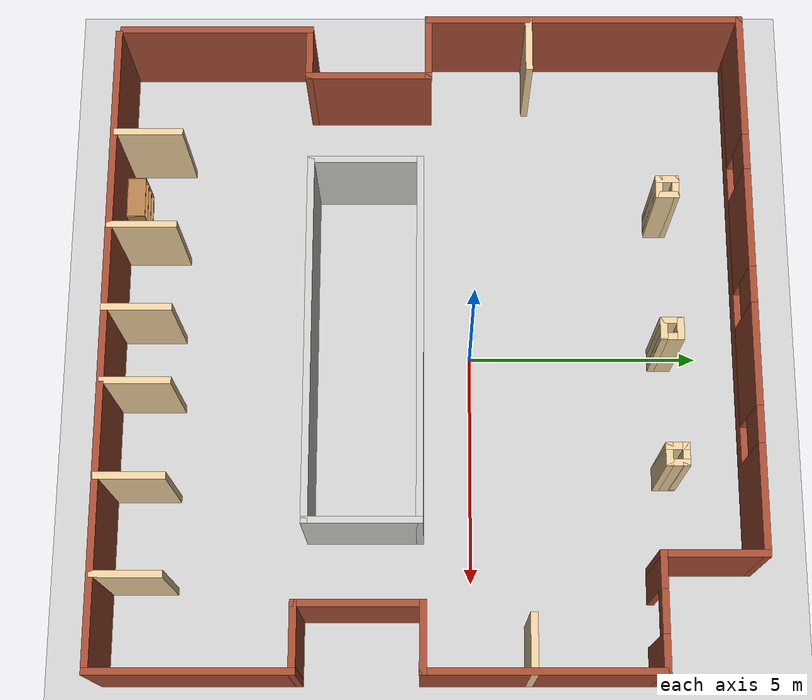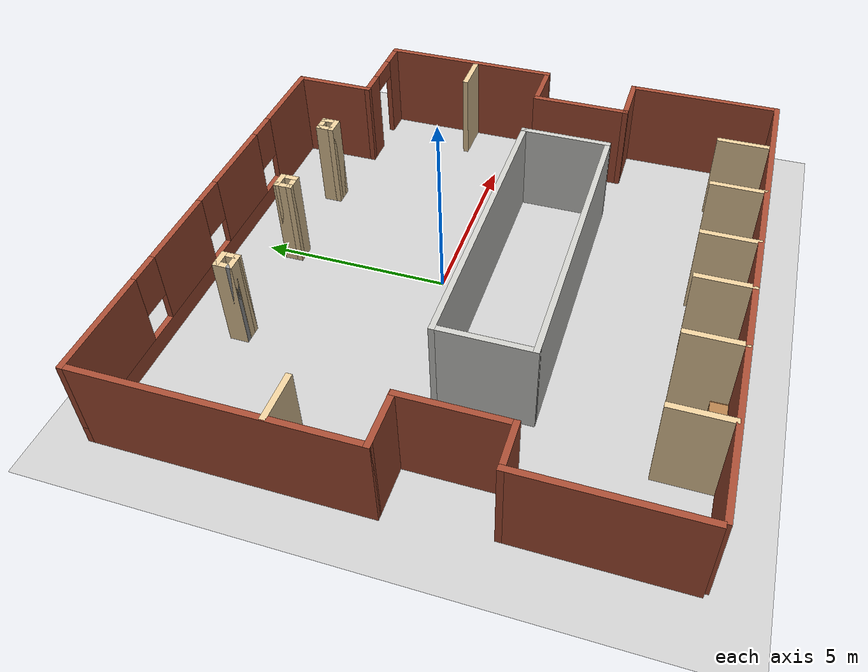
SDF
<sdf version="1.6">
 <world name="default">
  <model name="ground_plane">
   <static>1</static>
   <link name="link">
    <collision name="collision">
     <geometry><plane><normal>0 0 1</normal><size>100 100</size></plane></geometry>
     <surface><friction><ode><mu>100</mu><mu2>50</mu2></ode></friction></surface>
    </collision>
    <visual name="visual">
     <cast_shadows>0</cast_shadows>
     <geometry><plane><normal>0 0 1</normal><size>100 100</size></plane></geometry>
     <material>
      <script><uri>file://media/materials/scripts/gazebo.material</uri><name>Gazebo/Grey</name></script>
     </material>
    </visual>
   </link>
  </model>
  <model name="Untitled">
   <pose>-0.0049 -0.88998 0 0 -0 0</pose>
   <link name="Wall_10">
    <collision name="Wall_10_Collision">
     <geometry><box><size>1.5 0.15 2.5</size></box></geometry>
     <pose>0 0 1.25 0 -0 0</pose>
    </collision>
    <visual name="Wall_10_Visual">
     <pose>0 0 1.25 0 -0 0</pose>
     <geometry><box><size>1.5 0.15 2.5</size></box></geometry>
     <material>
      <script><uri>file://media/materials/scripts/gazebo.material</uri><name>Gazebo/Bricks</name></script>
      <ambient>1 1 1 1</ambient>
     </material>
    </visual>
    <pose>6.42294 -2.725 0 0 -0 3.14159</pose>
   </link>
   <link name="Wall_11">
    <collision name="Wall_11_Collision">
     <geometry><box><size>2.75 0.15 2.5</size></box></geometry>
     <pose>0 0 1.25 0 -0 0</pose>
    </collision>
    <visual name="Wall_11_Visual">
     <pose>0 0 1.25 0 -0 0</pose>
     <geometry><box><size>2.75 0.15 2.5</size></box></geometry>
     <material>
      <script><uri>file://media/materials/scripts/gazebo.material</uri><name>Gazebo/Bricks</name></script>
      <ambient>1 1 1 1</ambient>
     </material>
    </visual>
    <pose>5.74794 -1.425 0 0 -0 1.5708</pose>
   </link>
   <link name="Wall_12">
    <collision name="Wall_12_Collision">
     <geometry><box><size>1.5 0.15 2.5</size></box></geometry>
     <pose>0 0 1.25 0 -0 0</pose>
    </collision>
    <visual name="Wall_12_Visual">
     <pose>0 0 1.25 0 -0 0</pose>
     <geometry><box><size>1.5 0.15 2.5</size></box></geometry>
     <material>
      <script><uri>file://media/materials/scripts/gazebo.material</uri><name>Gazebo/Bricks</name></script>
      <ambient>1 1 1 1</ambient>
     </material>
    </visual>
    <pose>6.42294 -0.125 0 0 -0 0</pose>
   </link>
   <link name="Wall_13">
    <collision name="Wall_13_Collision">
     <geometry><box><size>5 0.15 2.5</size></box></geometry>
     <pose>0 0 1.25 0 -0 0</pose>
    </collision>
    <visual name="Wall_13_Visual">
     <pose>0 0 1.25 0 -0 0</pose>
     <geometry><box><size>5 0.15 2.5</size></box></geometry>
     <material>
      <script><uri>file://media/materials/scripts/gazebo.material</uri><name>Gazebo/Bricks</name></script>
      <ambient>1 1 1 1</ambient>
     </material>
    </visual>
    <pose>7.09794 2.3 0 0 -0 1.5708</pose>
   </link>
   <link name="Wall_14">
    <pose>5.92294 4.725 0 0 -0 3.14159</pose>
    <visual name="Wall_14_Visual_0">
     <pose>-0.84094 0 1.25 0 -0 0</pose>
     <geometry><box><size>0.818121 0.15 2.5</size></box></geometry>
     <material>
      <script><uri>file://media/materials/scripts/gazebo.material</uri><name>Gazebo/Bricks</name></script>
      <ambient>1 1 1 1</ambient>
     </material>
    </visual>
    <collision name="Wall_14_Collision_0">
     <geometry><box><size>0.818121 0.15 2.5</size></box></geometry>
     <pose>-0.84094 0 1.25 0 -0 0</pose>
    </collision>
    <visual name="Wall_14_Visual_1">
     <pose>0.85906 0 1.25 0 -0 0</pose>
     <geometry><box><size>0.781879 0.15 2.5</size></box></geometry>
     <material>
      <script><uri>file://media/materials/scripts/gazebo.material</uri><name>Gazebo/Bricks</name></script>
      <ambient>1 1 1 1</ambient>
     </material>
    </visual>
    <collision name="Wall_14_Collision_1">
     <geometry><box><size>0.781879 0.15 2.5</size></box></geometry>
     <pose>0.85906 0 1.25 0 -0 0</pose>
    </collision>
    <visual name="Wall_14_Visual_2">
     <pose>0.018121 0 2.25 0 -0 0</pose>
     <geometry><box><size>0.9 0.15 0.5</size></box></geometry>
     <material>
      <script><uri>file://media/materials/scripts/gazebo.material</uri><name>Gazebo/Bricks</name></script>
      <ambient>1 1 1 1</ambient>
     </material>
    </visual>
    <collision name="Wall_14_Collision_2">
     <geometry><box><size>0.9 0.15 0.5</size></box></geometry>
     <pose>0.018121 0 2.25 0 -0 0</pose>
    </collision>
   </link>
   <link name="Wall_15">
    <collision name="Wall_15_Collision">
     <geometry><box><size>2.25 0.15 2.5</size></box></geometry>
     <pose>0 0 1.25 0 -0 0</pose>
    </collision>
    <visual name="Wall_15_Visual">
     <pose>0 0 1.25 0 -0 0</pose>
     <geometry><box><size>2.25 0.15 2.5</size></box></geometry>
     <material>
      <script><uri>file://media/materials/scripts/gazebo.material</uri><name>Gazebo/Bricks</name></script>
      <ambient>1 1 1 1</ambient>
     </material>
    </visual>
    <pose>4.74794 5.775 0 0 -0 1.5708</pose>
   </link>
   <link name="Wall_16">
    <pose>-1.17706 6.825 0 0 -0 3.14159</pose>
    <visual name="Wall_16_Visual_0">
     <pose>-4.8211 0 1.25 0 -0 0</pose>
     <geometry><box><size>2.3578 0.15 2.5</size></box></geometry>
     <material>
      <script><uri>file://media/materials/scripts/gazebo.material</uri><name>Gazebo/Bricks</name></script>
      <ambient>1 1 1 1</ambient>
     </material>
    </visual>
    <collision name="Wall_16_Collision_0">
     <geometry><box><size>2.3578 0.15 2.5</size></box></geometry>
     <pose>-4.8211 0 1.25 0 -0 0</pose>
    </collision>
    <visual name="Wall_16_Visual_1">
     <pose>1.1789 0 0.25 0 -0 0</pose>
     <geometry><box><size>9.6422 0.15 0.5</size></box></geometry>
     <material>
      <script><uri>file://media/materials/scripts/gazebo.material</uri><name>Gazebo/Bricks</name></script>
      <ambient>1 1 1 1</ambient>
     </material>
    </visual>
    <collision name="Wall_16_Collision_1">
     <geometry><box><size>9.6422 0.15 0.5</size></box></geometry>
     <pose>1.1789 0 0.25 0 -0 0</pose>
    </collision>
    <visual name="Wall_16_Visual_2">
     <pose>-1.72714 0 1.5 0 -0 0</pose>
     <geometry><box><size>2.23011 0.15 2</size></box></geometry>
     <material>
      <script><uri>file://media/materials/scripts/gazebo.material</uri><name>Gazebo/Bricks</name></script>
      <ambient>1 1 1 1</ambient>
     </material>
    </visual>
    <collision name="Wall_16_Collision_2">
     <geometry><box><size>2.23011 0.15 2</size></box></geometry>
     <pose>-1.72714 0 1.5 0 -0 0</pose>
    </collision>
    <visual name="Wall_16_Visual_3">
     <pose>1.2914 0 1.5 0 -0 0</pose>
     <geometry><box><size>2.20698 0.15 2</size></box></geometry>
     <material>
      <script><uri>file://media/materials/scripts/gazebo.material</uri><name>Gazebo/Bricks</name></script>
      <ambient>1 1 1 1</ambient>
     </material>
    </visual>
    <collision name="Wall_16_Collision_3">
     <geometry><box><size>2.20698 0.15 2</size></box></geometry>
     <pose>1.2914 0 1.5 0 -0 0</pose>
    </collision>
    <visual name="Wall_16_Visual_4">
     <pose>4.59744 0 1.5 0 -0 0</pose>
     <geometry><box><size>2.80511 0.15 2</size></box></geometry>
     <material>
      <script><uri>file://media/materials/scripts/gazebo.material</uri><name>Gazebo/Bricks</name></script>
      <ambient>1 1 1 1</ambient>
     </material>
    </visual>
    <collision name="Wall_16_Collision_4">
     <geometry><box><size>2.80511 0.15 2</size></box></geometry>
     <pose>4.59744 0 1.5 0 -0 0</pose>
    </collision>
    <visual name="Wall_16_Visual_5">
     <pose>-3.2422 0 1.9 0 -0 0</pose>
     <geometry><box><size>0.8 0.15 1.2</size></box></geometry>
     <material>
      <script><uri>file://media/materials/scripts/gazebo.material</uri><name>Gazebo/Bricks</name></script>
      <ambient>1 1 1 1</ambient>
     </material>
    </visual>
    <collision name="Wall_16_Collision_5">
     <geometry><box><size>0.8 0.15 1.2</size></box></geometry>
     <pose>-3.2422 0 1.9 0 -0 0</pose>
    </collision>
    <visual name="Wall_16_Visual_6">
     <pose>-0.212089 0 1.9 0 -0 0</pose>
     <geometry><box><size>0.8 0.15 1.2</size></box></geometry>
     <material>
      <script><uri>file://media/materials/scripts/gazebo.material</uri><name>Gazebo/Bricks</name></script>
      <ambient>1 1 1 1</ambient>
     </material>
    </visual>
    <collision name="Wall_16_Collision_6">
     <geometry><box><size>0.8 0.15 1.2</size></box></geometry>
     <pose>-0.212089 0 1.9 0 -0 0</pose>
    </collision>
    <visual name="Wall_16_Visual_7">
     <pose>2.79489 0 1.9 0 -0 0</pose>
     <geometry><box><size>0.8 0.15 1.2</size></box></geometry>
     <material>
      <script><uri>file://media/materials/scripts/gazebo.material</uri><name>Gazebo/Bricks</name></script>
      <ambient>1 1 1 1</ambient>
     </material>
    </visual>
    <collision name="Wall_16_Collision_7">
     <geometry><box><size>0.8 0.15 1.2</size></box></geometry>
     <pose>2.79489 0 1.9 0 -0 0</pose>
    </collision>
   </link>
   <link name="Wall_17">
    <collision name="Wall_17_Collision">
     <geometry><box><size>7 0.15 2.5</size></box></geometry>
     <pose>0 0 1.25 0 -0 0</pose>
    </collision>
    <visual name="Wall_17_Visual">
     <pose>0 0 1.25 0 -0 0</pose>
     <geometry><box><size>7 0.15 2.5</size></box></geometry>
     <material>
      <script><uri>file://media/materials/scripts/gazebo.material</uri><name>Gazebo/Bricks</name></script>
      <ambient>1 1 1 1</ambient>
     </material>
    </visual>
    <pose>-7.10206 3.4 0 0 0 -1.5708</pose>
   </link>
   <link name="Wall_18">
    <collision name="Wall_18_Collision">
     <geometry><box><size>1.5 0.15 2.5</size></box></geometry>
     <pose>0 0 1.25 0 -0 0</pose>
    </collision>
    <visual name="Wall_18_Visual">
     <pose>0 0 1.25 0 -0 0</pose>
     <geometry><box><size>1.5 0.15 2.5</size></box></geometry>
     <material>
      <script><uri>file://media/materials/scripts/gazebo.material</uri><name>Gazebo/Bricks</name></script>
      <ambient>1 1 1 1</ambient>
     </material>
    </visual>
    <pose>-6.42706 -0.025 0 0 -0 0</pose>
   </link>
   <link name="Wall_19">
    <collision name="Wall_19_Collision">
     <geometry><box><size>2.75 0.15 2.5</size></box></geometry>
     <pose>0 0 1.25 0 -0 0</pose>
    </collision>
    <visual name="Wall_19_Visual">
     <pose>0 0 1.25 0 -0 0</pose>
     <geometry><box><size>2.75 0.15 2.5</size></box></geometry>
     <material>
      <script><uri>file://media/materials/scripts/gazebo.material</uri><name>Gazebo/Bricks</name></script>
      <ambient>1 1 1 1</ambient>
     </material>
    </visual>
    <pose>-5.75206 -1.325 0 0 0 -1.5708</pose>
   </link>
   <link name="Wall_20">
    <collision name="Wall_20_Collision">
     <geometry><box><size>1.25 0.15 2.5</size></box></geometry>
     <pose>0 0 1.25 0 -0 0</pose>
    </collision>
    <visual name="Wall_20_Visual">
     <pose>0 0 1.25 0 -0 0</pose>
     <geometry><box><size>1.25 0.15 2.5</size></box></geometry>
     <material>
      <script><uri>file://media/materials/scripts/gazebo.material</uri><name>Gazebo/Bricks</name></script>
      <ambient>1 1 1 1</ambient>
     </material>
    </visual>
    <pose>-6.30206 -2.625 0 0 -0 3.14159</pose>
   </link>
   <link name="Wall_21">
    <collision name="Wall_21_Collision">
     <geometry><box><size>4.25 0.15 2.5</size></box></geometry>
     <pose>0 0 1.25 0 -0 0</pose>
    </collision>
    <visual name="Wall_21_Visual">
     <pose>0 0 1.25 0 -0 0</pose>
     <geometry><box><size>4.25 0.15 2.5</size></box></geometry>
     <material>
      <script><uri>file://media/materials/scripts/gazebo.material</uri><name>Gazebo/Bricks</name></script>
      <ambient>1 1 1 1</ambient>
     </material>
    </visual>
    <pose>-6.85206 -4.675 0 0 0 -1.5708</pose>
   </link>
   <link name="Wall_23">
    <collision name="Wall_23_Collision">
     <geometry><box><size>8 0.15 2.5</size></box></geometry>
     <pose>0 0 1.25 0 -0 0</pose>
    </collision>
    <visual name="Wall_23_Visual">
     <pose>0 0 1.25 0 -0 0</pose>
     <geometry><box><size>8 0.15 2.5</size></box></geometry>
     <material>
      <script><uri>file://media/materials/scripts/gazebo.material</uri><name>Gazebo/CeilingTiled</name></script>
      <ambient>1 1 1 1</ambient>
     </material>
    </visual>
    <pose>0.138097 -2.54584 0 0 -0 0</pose>
   </link>
   <link name="Wall_24">
    <collision name="Wall_24_Collision">
     <geometry><box><size>2.5 0.15 2.5</size></box></geometry>
     <pose>0 0 1.25 0 -0 0</pose>
    </collision>
    <visual name="Wall_24_Visual">
     <pose>0 0 1.25 0 -0 0</pose>
     <geometry><box><size>2.5 0.15 2.5</size></box></geometry>
     <material>
      <script><uri>file://media/materials/scripts/gazebo.material</uri><name>Gazebo/CeilingTiled</name></script>
      <ambient>1 1 1 1</ambient>
     </material>
    </visual>
    <pose>4.0631 -1.37084 0 0 -0 1.5708</pose>
   </link>
   <link name="Wall_25">
    <collision name="Wall_25_Collision">
     <geometry><box><size>8 0.15 2.5</size></box></geometry>
     <pose>0 0 1.25 0 -0 0</pose>
    </collision>
    <visual name="Wall_25_Visual">
     <pose>0 0 1.25 0 -0 0</pose>
     <geometry><box><size>8 0.15 2.5</size></box></geometry>
     <material>
      <script><uri>file://media/materials/scripts/gazebo.material</uri><name>Gazebo/CeilingTiled</name></script>
      <ambient>1 1 1 1</ambient>
     </material>
    </visual>
    <pose>0.138097 -0.195838 0 0 -0 3.14159</pose>
   </link>
   <link name="Wall_26">
    <collision name="Wall_26_Collision">
     <geometry><box><size>2.5 0.15 2.5</size></box></geometry>
     <pose>0 0 1.25 0 -0 0</pose>
    </collision>
    <visual name="Wall_26_Visual">
     <pose>0 0 1.25 0 -0 0</pose>
     <geometry><box><size>2.5 0.15 2.5</size></box></geometry>
     <material>
      <script><uri>file://media/materials/scripts/gazebo.material</uri><name>Gazebo/CeilingTiled</name></script>
      <ambient>1 1 1 1</ambient>
     </material>
    </visual>
    <pose>-3.7869 -1.37084 0 0 0 -1.5708</pose>
   </link>
   <link name="Wall_28">
    <collision name="Wall_28_Collision">
     <geometry><box><size>1.5 0.15 2.5</size></box></geometry>
     <pose>0 0 1.25 0 -0 0</pose>
    </collision>
    <visual name="Wall_28_Visual">
     <pose>0 0 1.25 0 -0 0</pose>
     <geometry><box><size>1.5 0.15 2.5</size></box></geometry>
     <material>
      <script><uri>file://media/materials/scripts/gazebo.material</uri><name>Gazebo/Grey</name></script>
      <ambient>0.921569 0.807843 0.615686 1</ambient>
     </material>
    </visual>
    <pose>-4.43456 -6.08061 0 0 -0 1.5708</pose>
   </link>
   <link name="Wall_30">
    <collision name="Wall_30_Collision">
     <geometry><box><size>1.5 0.15 2.5</size></box></geometry>
     <pose>0 0 1.25 0 -0 0</pose>
    </collision>
    <visual name="Wall_30_Visual">
     <pose>0 0 1.25 0 -0 0</pose>
     <geometry><box><size>1.5 0.15 2.5</size></box></geometry>
     <material>
      <script><uri>file://media/materials/scripts/gazebo.material</uri><name>Gazebo/Grey</name></script>
      <ambient>0.921569 0.807843 0.615686 1</ambient>
     </material>
    </visual>
    <pose>-2.30654 -6.12687 0 0 -0 1.5708</pose>
   </link>
   <link name="Wall_32">
    <collision name="Wall_32_Collision">
     <geometry><box><size>1.5 0.15 2.5</size></box></geometry>
     <pose>0 0 1.25 0 -0 0</pose>
    </collision>
    <visual name="Wall_32_Visual">
     <pose>0 0 1.25 0 -0 0</pose>
     <geometry><box><size>1.5 0.15 2.5</size></box></geometry>
     <material>
      <script><uri>file://media/materials/scripts/gazebo.material</uri><name>Gazebo/Grey</name></script>
      <ambient>0.921569 0.807843 0.615686 1</ambient>
     </material>
    </visual>
    <pose>-0.456095 -6.15 0 0 -0 1.5708</pose>
   </link>
   <link name="Wall_34">
    <collision name="Wall_34_Collision">
     <geometry><box><size>1.5 0.15 2.5</size></box></geometry>
     <pose>0 0 1.25 0 -0 0</pose>
    </collision>
    <visual name="Wall_34_Visual">
     <pose>0 0 1.25 0 -0 0</pose>
     <geometry><box><size>1.5 0.15 2.5</size></box></geometry>
     <material>
      <script><uri>file://media/materials/scripts/gazebo.material</uri><name>Gazebo/Grey</name></script>
      <ambient>0.921569 0.807843 0.615686 1</ambient>
     </material>
    </visual>
    <pose>1.13992 -6.10374 0 0 -0 1.5708</pose>
   </link>
   <link name="Wall_36">
    <collision name="Wall_36_Collision">
     <geometry><box><size>1.5 0.15 2.5</size></box></geometry>
     <pose>0 0 1.25 0 -0 0</pose>
    </collision>
    <visual name="Wall_36_Visual">
     <pose>0 0 1.25 0 -0 0</pose>
     <geometry><box><size>1.5 0.15 2.5</size></box></geometry>
     <material>
      <script><uri>file://media/materials/scripts/gazebo.material</uri><name>Gazebo/Grey</name></script>
      <ambient>0.921569 0.807843 0.615686 1</ambient>
     </material>
    </visual>
    <pose>3.15228 -6.12687 0 0 -0 1.5708</pose>
   </link>
   <link name="Wall_38">
    <collision name="Wall_38_Collision">
     <geometry><box><size>1.5 0.15 2.5</size></box></geometry>
     <pose>0 0 1.25 0 -0 0</pose>
    </collision>
    <visual name="Wall_38_Visual">
     <pose>0 0 1.25 0 -0 0</pose>
     <geometry><box><size>1.5 0.15 2.5</size></box></geometry>
     <material>
      <script><uri>file://media/materials/scripts/gazebo.material</uri><name>Gazebo/Grey</name></script>
      <ambient>0.921569 0.807843 0.615686 1</ambient>
     </material>
    </visual>
    <pose>5.16464 -6.10374 0 0 -0 1.5708</pose>
   </link>
   <link name="Wall_46">
    <collision name="Wall_46_Collision">
     <geometry><box><size>0.15 0.15 2.5</size></box></geometry>
     <pose>0 0 1.25 0 -0 0</pose>
    </collision>
    <visual name="Wall_46_Visual">
     <pose>0 0 1.25 0 -0 0</pose>
     <geometry><box><size>0.15 0.15 2.5</size></box></geometry>
     <material>
      <script><uri>file://media/materials/scripts/gazebo.material</uri><name>Gazebo/Grey</name></script>
      <ambient>1 1 1 1</ambient>
     </material>
    </visual>
    <pose>-3.332 4.92047 0 0 -0 0</pose>
   </link>
   <link name="Wall_49">
    <collision name="Wall_49_Collision">
     <geometry><box><size>0.5 0.15 2.5</size></box></geometry>
     <pose>0 0 1.25 0 -0 0</pose>
    </collision>
    <visual name="Wall_49_Visual">
     <pose>0 0 1.25 0 -0 0</pose>
     <geometry><box><size>0.5 0.15 2.5</size></box></geometry>
     <material>
      <script><uri>file://media/materials/scripts/gazebo.material</uri><name>Gazebo/Grey</name></script>
      <ambient>0.921569 0.807843 0.615686 1</ambient>
     </material>
    </visual>
    <pose>-3.15699 4.92047 0 0 -0 0</pose>
   </link>
   <link name="Wall_50">
    <collision name="Wall_50_Collision">
     <geometry><box><size>0.5 0.15 2.5</size></box></geometry>
     <pose>0 0 1.25 0 -0 0</pose>
    </collision>
    <visual name="Wall_50_Visual">
     <pose>0 0 1.25 0 -0 0</pose>
     <geometry><box><size>0.5 0.15 2.5</size></box></geometry>
     <material>
      <script><uri>file://media/materials/scripts/gazebo.material</uri><name>Gazebo/Grey</name></script>
      <ambient>0.921569 0.807843 0.615686 1</ambient>
     </material>
    </visual>
    <pose>-2.98199 5.09547 0 0 -0 1.5708</pose>
   </link>
   <link name="Wall_51">
    <collision name="Wall_51_Collision">
     <geometry><box><size>0.5 0.15 2.5</size></box></geometry>
     <pose>0 0 1.25 0 -0 0</pose>
    </collision>
    <visual name="Wall_51_Visual">
     <pose>0 0 1.25 0 -0 0</pose>
     <geometry><box><size>0.5 0.15 2.5</size></box></geometry>
     <material>
      <script><uri>file://media/materials/scripts/gazebo.material</uri><name>Gazebo/Grey</name></script>
      <ambient>0.921569 0.807843 0.615686 1</ambient>
     </material>
    </visual>
    <pose>-3.15699 5.27047 0 0 -0 3.14159</pose>
   </link>
   <link name="Wall_52">
    <collision name="Wall_52_Collision">
     <geometry><box><size>0.5 0.15 2.5</size></box></geometry>
     <pose>0 0 1.25 0 -0 0</pose>
    </collision>
    <visual name="Wall_52_Visual">
     <pose>0 0 1.25 0 -0 0</pose>
     <geometry><box><size>0.5 0.15 2.5</size></box></geometry>
     <material>
      <script><uri>file://media/materials/scripts/gazebo.material</uri><name>Gazebo/Grey</name></script>
      <ambient>0.921569 0.807843 0.615686 1</ambient>
     </material>
    </visual>
    <pose>-3.332 5.09547 0 0 0 -1.5708</pose>
   </link>
   <link name="Wall_54">
    <collision name="Wall_54_Collision">
     <geometry><box><size>0.5 0.15 2.5</size></box></geometry>
     <pose>0 0 1.25 0 -0 0</pose>
    </collision>
    <visual name="Wall_54_Visual">
     <pose>0 0 1.25 0 -0 0</pose>
     <geometry><box><size>0.5 0.15 2.5</size></box></geometry>
     <material>
      <script><uri>file://media/materials/scripts/gazebo.material</uri><name>Gazebo/Grey</name></script>
      <ambient>0.921569 0.807843 0.615686 1</ambient>
     </material>
    </visual>
    <pose>-0.16542 5.08224 0 0 -0 1.5708</pose>
   </link>
   <link name="Wall_55">
    <collision name="Wall_55_Collision">
     <geometry><box><size>0.5 0.15 2.5</size></box></geometry>
     <pose>0 0 1.25 0 -0 0</pose>
    </collision>
    <visual name="Wall_55_Visual">
     <pose>0 0 1.25 0 -0 0</pose>
     <geometry><box><size>0.5 0.15 2.5</size></box></geometry>
     <material>
      <script><uri>file://media/materials/scripts/gazebo.material</uri><name>Gazebo/Grey</name></script>
      <ambient>0.921569 0.807843 0.615686 1</ambient>
     </material>
    </visual>
    <pose>0.00958 5.25724 0 0 -0 0</pose>
   </link>
   <link name="Wall_56">
    <collision name="Wall_56_Collision">
     <geometry><box><size>0.5 0.15 2.5</size></box></geometry>
     <pose>0 0 1.25 0 -0 0</pose>
    </collision>
    <visual name="Wall_56_Visual">
     <pose>0 0 1.25 0 -0 0</pose>
     <geometry><box><size>0.5 0.15 2.5</size></box></geometry>
     <material>
      <script><uri>file://media/materials/scripts/gazebo.material</uri><name>Gazebo/Grey</name></script>
      <ambient>0.921569 0.807843 0.615686 1</ambient>
     </material>
    </visual>
    <pose>0.18458 5.08224 0 0 0 -1.5708</pose>
   </link>
   <link name="Wall_57">
    <collision name="Wall_57_Collision">
     <geometry><box><size>0.5 0.15 2.5</size></box></geometry>
     <pose>0 0 1.25 0 -0 0</pose>
    </collision>
    <visual name="Wall_57_Visual">
     <pose>0 0 1.25 0 -0 0</pose>
     <geometry><box><size>0.5 0.15 2.5</size></box></geometry>
     <material>
      <script><uri>file://media/materials/scripts/gazebo.material</uri><name>Gazebo/Grey</name></script>
      <ambient>0.921569 0.807843 0.615686 1</ambient>
     </material>
    </visual>
    <pose>0.00958 4.90724 0 0 -0 3.14159</pose>
   </link>
   <link name="Wall_59">
    <collision name="Wall_59_Collision">
     <geometry><box><size>0.5 0.15 2.5</size></box></geometry>
     <pose>0 0 1.25 0 -0 0</pose>
    </collision>
    <visual name="Wall_59_Visual">
     <pose>0 0 1.25 0 -0 0</pose>
     <geometry><box><size>0.5 0.15 2.5</size></box></geometry>
     <material>
      <script><uri>file://media/materials/scripts/gazebo.material</uri><name>Gazebo/Grey</name></script>
      <ambient>0.921569 0.807843 0.615686 1</ambient>
     </material>
    </visual>
    <pose>2.53248 5.09547 0 0 -0 1.5708</pose>
   </link>
   <link name="Wall_60">
    <collision name="Wall_60_Collision">
     <geometry><box><size>0.5 0.15 2.5</size></box></geometry>
     <pose>0 0 1.25 0 -0 0</pose>
    </collision>
    <visual name="Wall_60_Visual">
     <pose>0 0 1.25 0 -0 0</pose>
     <geometry><box><size>0.5 0.15 2.5</size></box></geometry>
     <material>
      <script><uri>file://media/materials/scripts/gazebo.material</uri><name>Gazebo/Grey</name></script>
      <ambient>0.921569 0.807843 0.615686 1</ambient>
     </material>
    </visual>
    <pose>2.70748 5.27047 0 0 -0 0</pose>
   </link>
   <link name="Wall_61">
    <collision name="Wall_61_Collision">
     <geometry><box><size>0.5 0.15 2.5</size></box></geometry>
     <pose>0 0 1.25 0 -0 0</pose>
    </collision>
    <visual name="Wall_61_Visual">
     <pose>0 0 1.25 0 -0 0</pose>
     <geometry><box><size>0.5 0.15 2.5</size></box></geometry>
     <material>
      <script><uri>file://media/materials/scripts/gazebo.material</uri><name>Gazebo/Grey</name></script>
      <ambient>0.921569 0.807843 0.615686 1</ambient>
     </material>
    </visual>
    <pose>2.88248 5.09547 0 0 0 -1.5708</pose>
   </link>
   <link name="Wall_62">
    <collision name="Wall_62_Collision">
     <geometry><box><size>0.5 0.15 2.5</size></box></geometry>
     <pose>0 0 1.25 0 -0 0</pose>
    </collision>
    <visual name="Wall_62_Visual">
     <pose>0 0 1.25 0 -0 0</pose>
     <geometry><box><size>0.5 0.15 2.5</size></box></geometry>
     <material>
      <script><uri>file://media/materials/scripts/gazebo.material</uri><name>Gazebo/Grey</name></script>
      <ambient>0.921569 0.807843 0.615686 1</ambient>
     </material>
    </visual>
    <pose>2.70748 4.92047 0 0 -0 3.14159</pose>
   </link>
   <link name="Wall_66">
    <collision name="Wall_66_Collision">
     <geometry><box><size>1.25 0.15 2.5</size></box></geometry>
     <pose>0 0 1.25 0 -0 0</pose>
    </collision>
    <visual name="Wall_66_Visual">
     <pose>0 0 1.25 0 -0 0</pose>
     <geometry><box><size>1.25 0.15 2.5</size></box></geometry>
     <material>
      <script><uri>file://media/materials/scripts/gazebo.material</uri><name>Gazebo/Grey</name></script>
      <ambient>0.921569 0.807843 0.615686 1</ambient>
     </material>
    </visual>
    <pose>6.55206 2.09572 0 0 -0 3.14159</pose>
   </link>
   <link name="Wall_68">
    <collision name="Wall_68_Collision">
     <geometry><box><size>1.25 0.15 2.5</size></box></geometry>
     <pose>0 0 1.25 0 -0 0</pose>
    </collision>
    <visual name="Wall_68_Visual">
     <pose>0 0 1.25 0 -0 0</pose>
     <geometry><box><size>1.25 0.15 2.5</size></box></geometry>
     <material>
      <script><uri>file://media/materials/scripts/gazebo.material</uri><name>Gazebo/Grey</name></script>
      <ambient>0.921569 0.807843 0.615686 1</ambient>
     </material>
    </visual>
    <pose>-6.527 2.18824 0 0 -0 0</pose>
   </link>
   <link name="Wall_8">
    <collision name="Wall_8_Collision">
     <geometry><box><size>14 0.15 2.5</size></box></geometry>
     <pose>0 0 1.25 0 -0 0</pose>
    </collision>
    <visual name="Wall_8_Visual">
     <pose>0 0 1.25 0 -0 0</pose>
     <geometry><box><size>14 0.15 2.5</size></box></geometry>
     <material>
      <script><uri>file://media/materials/scripts/gazebo.material</uri><name>Gazebo/Bricks</name></script>
      <ambient>1 1 1 1</ambient>
     </material>
    </visual>
    <pose>0.172943 -6.825 0 0 -0 0</pose>
   </link>
   <link name="Wall_9">
    <collision name="Wall_9_Collision">
     <geometry><box><size>4.25 0.15 2.5</size></box></geometry>
     <pose>0 0 1.25 0 -0 0</pose>
    </collision>
    <visual name="Wall_9_Visual">
     <pose>0 0 1.25 0 -0 0</pose>
     <geometry><box><size>4.25 0.15 2.5</size></box></geometry>
     <material>
      <script><uri>file://media/materials/scripts/gazebo.material</uri><name>Gazebo/Bricks</name></script>
      <ambient>1 1 1 1</ambient>
     </material>
    </visual>
    <pose>7.09794 -4.775 0 0 -0 1.5708</pose>
   </link>
   <static>1</static>
  </model>
  <model name="bookshelf">
   <static>1</static>
   <link name="link">
    <inertial><mass>1</mass></inertial>
    <collision name="back">
     <pose>0 0.005 0.6 0 -0 0</pose>
     <geometry><box><size>0.9 0.01 1.2</size></box></geometry>
    </collision>
    <visual name="visual1">
     <pose>0 0.005 0.6 0 -0 0</pose>
     <geometry><box><size>0.9 0.01 1.2</size></box></geometry>
     <material>
      <script><uri>file://media/materials/scripts/gazebo.material</uri><name>Gazebo/Wood</name></script>
     </material>
    </visual>
    <collision name="left_side">
     <pose>0.45 -0.195 0.6 0 -0 0</pose>
     <geometry><box><size>0.02 0.4 1.2</size></box></geometry>
    </collision>
    <visual name="visual2">
     <pose>0.45 -0.195 0.6 0 -0 0</pose>
     <geometry><box><size>0.02 0.4 1.2</size></box></geometry>
     <material>
      <script><uri>file://media/materials/scripts/gazebo.material</uri><name>Gazebo/Wood</name></script>
     </material>
    </visual>
    <collision name="right_side">
     <pose>-0.45 -0.195 0.6 0 -0 0</pose>
     <geometry><box><size>0.02 0.4 1.2</size></box></geometry>
    </collision>
    <visual name="visual3">
     <pose>-0.45 -0.195 0.6 0 -0 0</pose>
     <geometry><box><size>0.02 0.4 1.2</size></box></geometry>
     <material>
      <script><uri>file://media/materials/scripts/gazebo.material</uri><name>Gazebo/Wood</name></script>
     </material>
    </visual>
    <collision name="bottom">
     <pose>0 -0.195 0.03 0 -0 0</pose>
     <geometry><box><size>0.88 0.4 0.06</size></box></geometry>
    </collision>
    <visual name="visual4">
     <pose>0 -0.195 0.03 0 -0 0</pose>
     <geometry><box><size>0.88 0.4 0.06</size></box></geometry>
     <material>
      <script><uri>file://media/materials/scripts/gazebo.material</uri><name>Gazebo/Wood</name></script>
     </material>
    </visual>
    <collision name="top">
     <pose>0 -0.195 1.19 0 -0 0</pose>
     <geometry><box><size>0.88 0.4 0.02</size></box></geometry>
    </collision>
    <visual name="visual5">
     <pose>0 -0.195 1.19 0 -0 0</pose>
     <geometry><box><size>0.88 0.4 0.02</size></box></geometry>
     <material>
      <script><uri>file://media/materials/scripts/gazebo.material</uri><name>Gazebo/Wood</name></script>
     </material>
    </visual>
    <collision name="low_shelf">
     <pose>0 -0.195 0.43 0 -0 0</pose>
     <geometry><box><size>0.88 0.4 0.02</size></box></geometry>
    </collision>
    <visual name="visual6">
     <pose>0 -0.195 0.43 0 -0 0</pose>
     <geometry><box><size>0.88 0.4 0.02</size></box></geometry>
     <material>
      <script><uri>file://media/materials/scripts/gazebo.material</uri><name>Gazebo/Wood</name></script>
     </material>
    </visual>
    <collision name="high_shelf">
     <pose>0 -0.195 0.8 0 -0 0</pose>
     <geometry><box><size>0.88 0.4 0.02</size></box></geometry>
    </collision>
    <visual name="visual7">
     <pose>0 -0.195 0.8 0 -0 0</pose>
     <geometry><box><size>0.88 0.4 0.02</size></box></geometry>
     <material>
      <script><uri>file://media/materials/scripts/gazebo.material</uri><name>Gazebo/Wood</name></script>
     </material>
    </visual>
   </link>
   <pose>-3.42081 -7.5776 0 0 0 -3.13015</pose>
  </model>
 </world>
</sdf>
